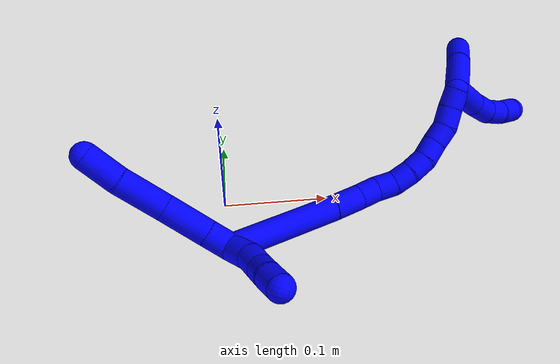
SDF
<sdf version="1.7">
 <world name="default">
  <model name="1">
   <static>0</static>
   <link name="1">
    <collision name="collision-cylinder-e_1_2_8">
     <pose>0.002393 -0.002239 0.012039 0.183877 0.192963 0.017846</pose>
     <geometry><cylinder><radius>0.0125</radius><length>0.024954</length></cylinder></geometry>
     <surface>
      <friction><ode><mu>1.16</mu><mu2>1.16</mu2><slip1>0</slip1><slip2>0</slip2></ode></friction>
      <contact><ode><kp>1e+06</kp><kd>1</kd><max_vel>0</max_vel><min_depth>0.001</min_depth></ode></contact>
     </surface>
    </collision>
    <visual name="visual-cylinder-e_1_2_8">
     <pose>0.002393 -0.002239 0.012039 0.183877 0.192963 0.017846</pose>
     <geometry><cylinder><radius>0.0125</radius><length>0.024954</length></cylinder></geometry>
     <material><ambient>0 0 1 1</ambient></material>
    </visual>
    <collision name="collision-cylinder-e_2_8_9">
     <pose>0.008993 -0.008092 0.045346 0.168337 0.192609 0.0163</pose>
     <geometry><cylinder><radius>0.0125</radius><length>0.043958</length></cylinder></geometry>
     <surface>
      <friction><ode><mu>1.16</mu><mu2>1.16</mu2><slip1>0</slip1><slip2>0</slip2></ode></friction>
      <contact><ode><kp>1e+06</kp><kd>1</kd><max_vel>0</max_vel><min_depth>0.001</min_depth></ode></contact>
     </surface>
    </collision>
    <visual name="visual-cylinder-e_2_8_9">
     <pose>0.008993 -0.008092 0.045346 0.168337 0.192609 0.0163</pose>
     <geometry><cylinder><radius>0.0125</radius><length>0.043958</length></cylinder></geometry>
     <material><ambient>0 0 1 1</ambient></material>
    </visual>
    <collision name="collision-cylinder-e_3_9_10">
     <pose>0.018222 -0.019362 0.087768 0.347217 0.21964 0.03867</pose>
     <geometry><cylinder><radius>0.0125</radius><length>0.046103</length></cylinder></geometry>
     <surface>
      <friction><ode><mu>1.16</mu><mu2>1.16</mu2><slip1>0</slip1><slip2>0</slip2></ode></friction>
      <contact><ode><kp>1e+06</kp><kd>1</kd><max_vel>0</max_vel><min_depth>0.001</min_depth></ode></contact>
     </surface>
    </collision>
    <visual name="visual-cylinder-e_3_9_10">
     <pose>0.018222 -0.019362 0.087768 0.347217 0.21964 0.03867</pose>
     <geometry><cylinder><radius>0.0125</radius><length>0.046103</length></cylinder></geometry>
     <material><ambient>0 0 1 1</ambient></material>
    </visual>
    <collision name="collision-cylinder-e_4_10_6">
     <pose>0.028421 -0.031039 0.125141 0.243076 0.300428 0.036969</pose>
     <geometry><cylinder><radius>0.0125</radius><length>0.034985</length></cylinder></geometry>
     <surface>
      <friction><ode><mu>1.16</mu><mu2>1.16</mu2><slip1>0</slip1><slip2>0</slip2></ode></friction>
      <contact><ode><kp>1e+06</kp><kd>1</kd><max_vel>0</max_vel><min_depth>0.001</min_depth></ode></contact>
     </surface>
    </collision>
    <visual name="visual-cylinder-e_4_10_6">
     <pose>0.028421 -0.031039 0.125141 0.243076 0.300428 0.036969</pose>
     <geometry><cylinder><radius>0.0125</radius><length>0.034985</length></cylinder></geometry>
     <material><ambient>0 0 1 1</ambient></material>
    </visual>
    <collision name="collision-cylinder-e_1_2_11">
     <pose>0.001552 -0.009533 -0.010181 2.38904 0.110821 0.278952</pose>
     <geometry><cylinder><radius>0.0125</radius><length>0.028067</length></cylinder></geometry>
     <surface>
      <friction><ode><mu>1.16</mu><mu2>1.16</mu2><slip1>0</slip1><slip2>0</slip2></ode></friction>
      <contact><ode><kp>1e+06</kp><kd>1</kd><max_vel>0</max_vel><min_depth>0.001</min_depth></ode></contact>
     </surface>
    </collision>
    <visual name="visual-cylinder-e_1_2_11">
     <pose>0.001552 -0.009533 -0.010181 2.38904 0.110821 0.278952</pose>
     <geometry><cylinder><radius>0.0125</radius><length>0.028067</length></cylinder></geometry>
     <material><ambient>0 0 1 1</ambient></material>
    </visual>
    <collision name="collision-cylinder-e_2_11_12">
     <pose>0.002665 -0.029394 -0.027194 2.15525 -0.035434 -0.065911</pose>
     <geometry><cylinder><radius>0.0125</radius><length>0.024782</length></cylinder></geometry>
     <surface>
      <friction><ode><mu>1.16</mu><mu2>1.16</mu2><slip1>0</slip1><slip2>0</slip2></ode></friction>
      <contact><ode><kp>1e+06</kp><kd>1</kd><max_vel>0</max_vel><min_depth>0.001</min_depth></ode></contact>
     </surface>
    </collision>
    <visual name="visual-cylinder-e_2_11_12">
     <pose>0.002665 -0.029394 -0.027194 2.15525 -0.035434 -0.065911</pose>
     <geometry><cylinder><radius>0.0125</radius><length>0.024782</length></cylinder></geometry>
     <material><ambient>0 0 1 1</ambient></material>
    </visual>
    <collision name="collision-cylinder-e_3_12_13">
     <pose>0.003148 -0.050674 -0.038799 1.98173 0.077041 0.11753</pose>
     <geometry><cylinder><radius>0.0125</radius><length>0.023964</length></cylinder></geometry>
     <surface>
      <friction><ode><mu>1.16</mu><mu2>1.16</mu2><slip1>0</slip1><slip2>0</slip2></ode></friction>
      <contact><ode><kp>1e+06</kp><kd>1</kd><max_vel>0</max_vel><min_depth>0.001</min_depth></ode></contact>
     </surface>
    </collision>
    <visual name="visual-cylinder-e_3_12_13">
     <pose>0.003148 -0.050674 -0.038799 1.98173 0.077041 0.11753</pose>
     <geometry><cylinder><radius>0.0125</radius><length>0.023964</length></cylinder></geometry>
     <material><ambient>0 0 1 1</ambient></material>
    </visual>
    <collision name="collision-cylinder-e_4_13_5">
     <pose>0.004073 -0.071176 -0.050144 2.1736 0.000196 0.000372</pose>
     <geometry><cylinder><radius>0.0125</radius><length>0.023187</length></cylinder></geometry>
     <surface>
      <friction><ode><mu>1.16</mu><mu2>1.16</mu2><slip1>0</slip1><slip2>0</slip2></ode></friction>
      <contact><ode><kp>1e+06</kp><kd>1</kd><max_vel>0</max_vel><min_depth>0.001</min_depth></ode></contact>
     </surface>
    </collision>
    <visual name="visual-cylinder-e_4_13_5">
     <pose>0.004073 -0.071176 -0.050144 2.1736 0.000196 0.000372</pose>
     <geometry><cylinder><radius>0.0125</radius><length>0.023187</length></cylinder></geometry>
     <material><ambient>0 0 1 1</ambient></material>
    </visual>
    <collision name="collision-cylinder-e_1_2_14">
     <pose>0.028962 0.029206 -0.035216 -2.44923 0.564358 -1.35403</pose>
     <geometry><cylinder><radius>0.0125</radius><length>0.108295</length></cylinder></geometry>
     <surface>
      <friction><ode><mu>1.16</mu><mu2>1.16</mu2><slip1>0</slip1><slip2>0</slip2></ode></friction>
      <contact><ode><kp>1e+06</kp><kd>1</kd><max_vel>0</max_vel><min_depth>0.001</min_depth></ode></contact>
     </surface>
    </collision>
    <visual name="visual-cylinder-e_1_2_14">
     <pose>0.028962 0.029206 -0.035216 -2.44923 0.564358 -1.35403</pose>
     <geometry><cylinder><radius>0.0125</radius><length>0.108295</length></cylinder></geometry>
     <material><ambient>0 0 1 1</ambient></material>
    </visual>
    <collision name="collision-cylinder-e_2_14_15">
     <pose>0.066271 0.067177 -0.079889 -2.39405 0.574489 -1.2911</pose>
     <geometry><cylinder><radius>0.0125</radius><length>0.03072</length></cylinder></geometry>
     <surface>
      <friction><ode><mu>1.16</mu><mu2>1.16</mu2><slip1>0</slip1><slip2>0</slip2></ode></friction>
      <contact><ode><kp>1e+06</kp><kd>1</kd><max_vel>0</max_vel><min_depth>0.001</min_depth></ode></contact>
     </surface>
    </collision>
    <visual name="visual-cylinder-e_2_14_15">
     <pose>0.066271 0.067177 -0.079889 -2.39405 0.574489 -1.2911</pose>
     <geometry><cylinder><radius>0.0125</radius><length>0.03072</length></cylinder></geometry>
     <material><ambient>0 0 1 1</ambient></material>
    </visual>
    <collision name="collision-cylinder-e_3_15_16">
     <pose>0.080979 0.080981 -0.095769 -2.47662 0.661911 -1.56583</pose>
     <geometry><cylinder><radius>0.0125</radius><length>0.020699</length></cylinder></geometry>
     <surface>
      <friction><ode><mu>1.16</mu><mu2>1.16</mu2><slip1>0</slip1><slip2>0</slip2></ode></friction>
      <contact><ode><kp>1e+06</kp><kd>1</kd><max_vel>0</max_vel><min_depth>0.001</min_depth></ode></contact>
     </surface>
    </collision>
    <visual name="visual-cylinder-e_3_15_16">
     <pose>0.080979 0.080981 -0.095769 -2.47662 0.661911 -1.56583</pose>
     <geometry><cylinder><radius>0.0125</radius><length>0.020699</length></cylinder></geometry>
     <material><ambient>0 0 1 1</ambient></material>
    </visual>
    <collision name="collision-cylinder-e_4_16_17">
     <pose>0.093168 0.089349 -0.109672 -2.72264 0.618725 -1.9677</pose>
     <geometry><cylinder><radius>0.0125</radius><length>0.020099</length></cylinder></geometry>
     <surface>
      <friction><ode><mu>1.16</mu><mu2>1.16</mu2><slip1>0</slip1><slip2>0</slip2></ode></friction>
      <contact><ode><kp>1e+06</kp><kd>1</kd><max_vel>0</max_vel><min_depth>0.001</min_depth></ode></contact>
     </surface>
    </collision>
    <visual name="visual-cylinder-e_4_16_17">
     <pose>0.093168 0.089349 -0.109672 -2.72264 0.618725 -1.9677</pose>
     <geometry><cylinder><radius>0.0125</radius><length>0.020099</length></cylinder></geometry>
     <material><ambient>0 0 1 1</ambient></material>
    </visual>
    <collision name="collision-cylinder-e_5_17_18">
     <pose>0.106926 0.095116 -0.12277 -2.73233 0.913033 -2.34195</pose>
     <geometry><cylinder><radius>0.0125</radius><length>0.02004</length></cylinder></geometry>
     <surface>
      <friction><ode><mu>1.16</mu><mu2>1.16</mu2><slip1>0</slip1><slip2>0</slip2></ode></friction>
      <contact><ode><kp>1e+06</kp><kd>1</kd><max_vel>0</max_vel><min_depth>0.001</min_depth></ode></contact>
     </surface>
    </collision>
    <visual name="visual-cylinder-e_5_17_18">
     <pose>0.106926 0.095116 -0.12277 -2.73233 0.913033 -2.34195</pose>
     <geometry><cylinder><radius>0.0125</radius><length>0.02004</length></cylinder></geometry>
     <material><ambient>0 0 1 1</ambient></material>
    </visual>
    <collision name="collision-cylinder-e_6_18_19">
     <pose>0.12331 0.100727 -0.132803 -2.51832 0.999457 -2.07546</pose>
     <geometry><cylinder><radius>0.0125</radius><length>0.020102</length></cylinder></geometry>
     <surface>
      <friction><ode><mu>1.16</mu><mu2>1.16</mu2><slip1>0</slip1><slip2>0</slip2></ode></friction>
      <contact><ode><kp>1e+06</kp><kd>1</kd><max_vel>0</max_vel><min_depth>0.001</min_depth></ode></contact>
     </surface>
    </collision>
    <visual name="visual-cylinder-e_6_18_19">
     <pose>0.12331 0.100727 -0.132803 -2.51832 0.999457 -2.07546</pose>
     <geometry><cylinder><radius>0.0125</radius><length>0.020102</length></cylinder></geometry>
     <material><ambient>0 0 1 1</ambient></material>
    </visual>
    <collision name="collision-cylinder-e_7_19_20">
     <pose>0.141004 0.107376 -0.1389 -2.02176 1.17477 -1.63104</pose>
     <geometry><cylinder><radius>0.0125</radius><length>0.020028</length></cylinder></geometry>
     <surface>
      <friction><ode><mu>1.16</mu><mu2>1.16</mu2><slip1>0</slip1><slip2>0</slip2></ode></friction>
      <contact><ode><kp>1e+06</kp><kd>1</kd><max_vel>0</max_vel><min_depth>0.001</min_depth></ode></contact>
     </surface>
    </collision>
    <visual name="visual-cylinder-e_7_19_20">
     <pose>0.141004 0.107376 -0.1389 -2.02176 1.17477 -1.63104</pose>
     <geometry><cylinder><radius>0.0125</radius><length>0.020028</length></cylinder></geometry>
     <material><ambient>0 0 1 1</ambient></material>
    </visual>
    <collision name="collision-cylinder-e_8_20_21">
     <pose>0.15979 0.112821 -0.142852 -2.42686 1.266 -2.20008</pose>
     <geometry><cylinder><radius>0.0125</radius><length>0.020017</length></cylinder></geometry>
     <surface>
      <friction><ode><mu>1.16</mu><mu2>1.16</mu2><slip1>0</slip1><slip2>0</slip2></ode></friction>
      <contact><ode><kp>1e+06</kp><kd>1</kd><max_vel>0</max_vel><min_depth>0.001</min_depth></ode></contact>
     </surface>
    </collision>
    <visual name="visual-cylinder-e_8_20_21">
     <pose>0.15979 0.112821 -0.142852 -2.42686 1.266 -2.20008</pose>
     <geometry><cylinder><radius>0.0125</radius><length>0.020017</length></cylinder></geometry>
     <material><ambient>0 0 1 1</ambient></material>
    </visual>
    <collision name="collision-cylinder-e_9_21_22">
     <pose>0.179177 0.11631 -0.144185 -1.01926 1.39135 -0.873174</pose>
     <geometry><cylinder><radius>0.0125</radius><length>0.02</length></cylinder></geometry>
     <surface>
      <friction><ode><mu>1.16</mu><mu2>1.16</mu2><slip1>0</slip1><slip2>0</slip2></ode></friction>
      <contact><ode><kp>1e+06</kp><kd>1</kd><max_vel>0</max_vel><min_depth>0.001</min_depth></ode></contact>
     </surface>
    </collision>
    <visual name="visual-cylinder-e_9_21_22">
     <pose>0.179177 0.11631 -0.144185 -1.01926 1.39135 -0.873174</pose>
     <geometry><cylinder><radius>0.0125</radius><length>0.02</length></cylinder></geometry>
     <material><ambient>0 0 1 1</ambient></material>
    </visual>
    <collision name="collision-cylinder-e_10_22_1">
     <pose>0.198996 0.118434 -0.143022 -1.20898 1.50619 -1.14924</pose>
     <geometry><cylinder><radius>0.0125</radius><length>0.02</length></cylinder></geometry>
     <surface>
      <friction><ode><mu>1.16</mu><mu2>1.16</mu2><slip1>0</slip1><slip2>0</slip2></ode></friction>
      <contact><ode><kp>1e+06</kp><kd>1</kd><max_vel>0</max_vel><min_depth>0.001</min_depth></ode></contact>
     </surface>
    </collision>
    <visual name="visual-cylinder-e_10_22_1">
     <pose>0.198996 0.118434 -0.143022 -1.20898 1.50619 -1.14924</pose>
     <geometry><cylinder><radius>0.0125</radius><length>0.02</length></cylinder></geometry>
     <material><ambient>0 0 1 1</ambient></material>
    </visual>
    <collision name="collision-cylinder-e_1_1_23">
     <pose>0.206218 0.132118 -0.154312 -2.2928 -0.156874 0.344444</pose>
     <geometry><cylinder><radius>0.0125</radius><length>0.035291</length></cylinder></geometry>
     <surface>
      <friction><ode><mu>1.16</mu><mu2>1.16</mu2><slip1>0</slip1><slip2>0</slip2></ode></friction>
      <contact><ode><kp>1e+06</kp><kd>1</kd><max_vel>0</max_vel><min_depth>0.001</min_depth></ode></contact>
     </surface>
    </collision>
    <visual name="visual-cylinder-e_1_1_23">
     <pose>0.206218 0.132118 -0.154312 -2.2928 -0.156874 0.344444</pose>
     <geometry><cylinder><radius>0.0125</radius><length>0.035291</length></cylinder></geometry>
     <material><ambient>0 0 1 1</ambient></material>
    </visual>
    <collision name="collision-cylinder-e_2_23_24">
     <pose>0.20258 0.153708 -0.174658 -2.37451 -0.071714 0.177328</pose>
     <geometry><cylinder><radius>0.0125</radius><length>0.024587</length></cylinder></geometry>
     <surface>
      <friction><ode><mu>1.16</mu><mu2>1.16</mu2><slip1>0</slip1><slip2>0</slip2></ode></friction>
      <contact><ode><kp>1e+06</kp><kd>1</kd><max_vel>0</max_vel><min_depth>0.001</min_depth></ode></contact>
     </surface>
    </collision>
    <visual name="visual-cylinder-e_2_23_24">
     <pose>0.20258 0.153708 -0.174658 -2.37451 -0.071714 0.177328</pose>
     <geometry><cylinder><radius>0.0125</radius><length>0.024587</length></cylinder></geometry>
     <material><ambient>0 0 1 1</ambient></material>
    </visual>
    <collision name="collision-cylinder-e_3_24_25">
     <pose>0.204075 0.168326 -0.191043 -2.46186 0.239844 -0.656901</pose>
     <geometry><cylinder><radius>0.0125</radius><length>0.020005</length></cylinder></geometry>
     <surface>
      <friction><ode><mu>1.16</mu><mu2>1.16</mu2><slip1>0</slip1><slip2>0</slip2></ode></friction>
      <contact><ode><kp>1e+06</kp><kd>1</kd><max_vel>0</max_vel><min_depth>0.001</min_depth></ode></contact>
     </surface>
    </collision>
    <visual name="visual-cylinder-e_3_24_25">
     <pose>0.204075 0.168326 -0.191043 -2.46186 0.239844 -0.656901</pose>
     <geometry><cylinder><radius>0.0125</radius><length>0.020005</length></cylinder></geometry>
     <material><ambient>0 0 1 1</ambient></material>
    </visual>
    <collision name="collision-cylinder-e_4_25_4">
     <pose>0.210403 0.181124 -0.204986 -2.333 0.403716 -0.892266</pose>
     <geometry><cylinder><radius>0.0125</radius><length>0.020117</length></cylinder></geometry>
     <surface>
      <friction><ode><mu>1.16</mu><mu2>1.16</mu2><slip1>0</slip1><slip2>0</slip2></ode></friction>
      <contact><ode><kp>1e+06</kp><kd>1</kd><max_vel>0</max_vel><min_depth>0.001</min_depth></ode></contact>
     </surface>
    </collision>
    <visual name="visual-cylinder-e_4_25_4">
     <pose>0.210403 0.181124 -0.204986 -2.333 0.403716 -0.892266</pose>
     <geometry><cylinder><radius>0.0125</radius><length>0.020117</length></cylinder></geometry>
     <material><ambient>0 0 1 1</ambient></material>
    </visual>
    <collision name="collision-cylinder-e_1_1_26">
     <pose>0.22437 0.145581 -0.140236 -1.47477 0.523578 -0.477457</pose>
     <geometry><cylinder><radius>0.0125</radius><length>0.061582</length></cylinder></geometry>
     <surface>
      <friction><ode><mu>1.16</mu><mu2>1.16</mu2><slip1>0</slip1><slip2>0</slip2></ode></friction>
      <contact><ode><kp>1e+06</kp><kd>1</kd><max_vel>0</max_vel><min_depth>0.001</min_depth></ode></contact>
     </surface>
    </collision>
    <visual name="visual-cylinder-e_1_1_26">
     <pose>0.22437 0.145581 -0.140236 -1.47477 0.523578 -0.477457</pose>
     <geometry><cylinder><radius>0.0125</radius><length>0.061582</length></cylinder></geometry>
     <material><ambient>0 0 1 1</ambient></material>
    </visual>
    <collision name="collision-cylinder-e_2_26_3">
     <pose>0.248575 0.189081 -0.135724 -1.45598 0.476473 -0.426327</pose>
     <geometry><cylinder><radius>0.0125</radius><length>0.038418</length></cylinder></geometry>
     <surface>
      <friction><ode><mu>1.16</mu><mu2>1.16</mu2><slip1>0</slip1><slip2>0</slip2></ode></friction>
      <contact><ode><kp>1e+06</kp><kd>1</kd><max_vel>0</max_vel><min_depth>0.001</min_depth></ode></contact>
     </surface>
    </collision>
    <visual name="visual-cylinder-e_2_26_3">
     <pose>0.248575 0.189081 -0.135724 -1.45598 0.476473 -0.426327</pose>
     <geometry><cylinder><radius>0.0125</radius><length>0.038418</length></cylinder></geometry>
     <material><ambient>0 0 1 1</ambient></material>
    </visual>
    <collision name="collision-sphere-3">
     <pose>0.257385 0.206038 -0.133769 0 -0 0</pose>
     <geometry><sphere><radius>0.0125</radius></sphere></geometry>
     <surface>
      <friction><ode><mu>1.16</mu><mu2>1.16</mu2><slip1>0</slip1><slip2>0</slip2></ode></friction>
      <contact><ode><kp>1e+06</kp><kd>1</kd><max_vel>0</max_vel><min_depth>0.001</min_depth></ode></contact>
     </surface>
    </collision>
    <visual name="visual-sphere-3">
     <pose>0.257385 0.206038 -0.133769 0 -0 0</pose>
     <geometry><sphere><radius>0.0125</radius></sphere></geometry>
     <material><ambient>0 0 1 1</ambient></material>
    </visual>
    <collision name="collision-sphere-26">
     <pose>0.239765 0.172125 -0.13768 0 -0 0</pose>
     <geometry><sphere><radius>0.0125</radius></sphere></geometry>
     <surface>
      <friction><ode><mu>1.16</mu><mu2>1.16</mu2><slip1>0</slip1><slip2>0</slip2></ode></friction>
      <contact><ode><kp>1e+06</kp><kd>1</kd><max_vel>0</max_vel><min_depth>0.001</min_depth></ode></contact>
     </surface>
    </collision>
    <visual name="visual-sphere-26">
     <pose>0.239765 0.172125 -0.13768 0 -0 0</pose>
     <geometry><sphere><radius>0.0125</radius></sphere></geometry>
     <material><ambient>0 0 1 1</ambient></material>
    </visual>
    <collision name="collision-sphere-4">
     <pose>0.214354 0.187814 -0.211374 0 -0 0</pose>
     <geometry><sphere><radius>0.0125</radius></sphere></geometry>
     <surface>
      <friction><ode><mu>1.16</mu><mu2>1.16</mu2><slip1>0</slip1><slip2>0</slip2></ode></friction>
      <contact><ode><kp>1e+06</kp><kd>1</kd><max_vel>0</max_vel><min_depth>0.001</min_depth></ode></contact>
     </surface>
    </collision>
    <visual name="visual-sphere-4">
     <pose>0.214354 0.187814 -0.211374 0 -0 0</pose>
     <geometry><sphere><radius>0.0125</radius></sphere></geometry>
     <material><ambient>0 0 1 1</ambient></material>
    </visual>
    <collision name="collision-sphere-25">
     <pose>0.206452 0.174433 -0.198599 0 -0 0</pose>
     <geometry><sphere><radius>0.0125</radius></sphere></geometry>
     <surface>
      <friction><ode><mu>1.16</mu><mu2>1.16</mu2><slip1>0</slip1><slip2>0</slip2></ode></friction>
      <contact><ode><kp>1e+06</kp><kd>1</kd><max_vel>0</max_vel><min_depth>0.001</min_depth></ode></contact>
     </surface>
    </collision>
    <visual name="visual-sphere-25">
     <pose>0.206452 0.174433 -0.198599 0 -0 0</pose>
     <geometry><sphere><radius>0.0125</radius></sphere></geometry>
     <material><ambient>0 0 1 1</ambient></material>
    </visual>
    <collision name="collision-sphere-24">
     <pose>0.201699 0.162219 -0.183486 0 -0 0</pose>
     <geometry><sphere><radius>0.0125</radius></sphere></geometry>
     <surface>
      <friction><ode><mu>1.16</mu><mu2>1.16</mu2><slip1>0</slip1><slip2>0</slip2></ode></friction>
      <contact><ode><kp>1e+06</kp><kd>1</kd><max_vel>0</max_vel><min_depth>0.001</min_depth></ode></contact>
     </surface>
    </collision>
    <visual name="visual-sphere-24">
     <pose>0.201699 0.162219 -0.183486 0 -0 0</pose>
     <geometry><sphere><radius>0.0125</radius></sphere></geometry>
     <material><ambient>0 0 1 1</ambient></material>
    </visual>
    <collision name="collision-sphere-23">
     <pose>0.203461 0.145198 -0.16583 0 -0 0</pose>
     <geometry><sphere><radius>0.0125</radius></sphere></geometry>
     <surface>
      <friction><ode><mu>1.16</mu><mu2>1.16</mu2><slip1>0</slip1><slip2>0</slip2></ode></friction>
      <contact><ode><kp>1e+06</kp><kd>1</kd><max_vel>0</max_vel><min_depth>0.001</min_depth></ode></contact>
     </surface>
    </collision>
    <visual name="visual-sphere-23">
     <pose>0.203461 0.145198 -0.16583 0 -0 0</pose>
     <geometry><sphere><radius>0.0125</radius></sphere></geometry>
     <material><ambient>0 0 1 1</ambient></material>
    </visual>
    <collision name="collision-sphere-1">
     <pose>0.208975 0.119038 -0.142793 0 -0 0</pose>
     <geometry><sphere><radius>0.0125</radius></sphere></geometry>
     <surface>
      <friction><ode><mu>1.16</mu><mu2>1.16</mu2><slip1>0</slip1><slip2>0</slip2></ode></friction>
      <contact><ode><kp>1e+06</kp><kd>1</kd><max_vel>0</max_vel><min_depth>0.001</min_depth></ode></contact>
     </surface>
    </collision>
    <visual name="visual-sphere-1">
     <pose>0.208975 0.119038 -0.142793 0 -0 0</pose>
     <geometry><sphere><radius>0.0125</radius></sphere></geometry>
     <material><ambient>0 0 1 1</ambient></material>
    </visual>
    <collision name="collision-sphere-22">
     <pose>0.189016 0.11783 -0.14325 0 -0 0</pose>
     <geometry><sphere><radius>0.0125</radius></sphere></geometry>
     <surface>
      <friction><ode><mu>1.16</mu><mu2>1.16</mu2><slip1>0</slip1><slip2>0</slip2></ode></friction>
      <contact><ode><kp>1e+06</kp><kd>1</kd><max_vel>0</max_vel><min_depth>0.001</min_depth></ode></contact>
     </surface>
    </collision>
    <visual name="visual-sphere-22">
     <pose>0.189016 0.11783 -0.14325 0 -0 0</pose>
     <geometry><sphere><radius>0.0125</radius></sphere></geometry>
     <material><ambient>0 0 1 1</ambient></material>
    </visual>
    <collision name="collision-sphere-21">
     <pose>0.169337 0.11479 -0.145121 0 -0 0</pose>
     <geometry><sphere><radius>0.0125</radius></sphere></geometry>
     <surface>
      <friction><ode><mu>1.16</mu><mu2>1.16</mu2><slip1>0</slip1><slip2>0</slip2></ode></friction>
      <contact><ode><kp>1e+06</kp><kd>1</kd><max_vel>0</max_vel><min_depth>0.001</min_depth></ode></contact>
     </surface>
    </collision>
    <visual name="visual-sphere-21">
     <pose>0.169337 0.11479 -0.145121 0 -0 0</pose>
     <geometry><sphere><radius>0.0125</radius></sphere></geometry>
     <material><ambient>0 0 1 1</ambient></material>
    </visual>
    <collision name="collision-sphere-11">
     <pose>0.003104 -0.019066 -0.020362 0 -0 0</pose>
     <geometry><sphere><radius>0.0125</radius></sphere></geometry>
     <surface>
      <friction><ode><mu>1.16</mu><mu2>1.16</mu2><slip1>0</slip1><slip2>0</slip2></ode></friction>
      <contact><ode><kp>1e+06</kp><kd>1</kd><max_vel>0</max_vel><min_depth>0.001</min_depth></ode></contact>
     </surface>
    </collision>
    <visual name="visual-sphere-11">
     <pose>0.003104 -0.019066 -0.020362 0 -0 0</pose>
     <geometry><sphere><radius>0.0125</radius></sphere></geometry>
     <material><ambient>0 0 1 1</ambient></material>
    </visual>
    <collision name="collision-sphere-6">
     <pose>0.033598 -0.035061 0.141359 0 -0 0</pose>
     <geometry><sphere><radius>0.0125</radius></sphere></geometry>
     <surface>
      <friction><ode><mu>1.16</mu><mu2>1.16</mu2><slip1>0</slip1><slip2>0</slip2></ode></friction>
      <contact><ode><kp>1e+06</kp><kd>1</kd><max_vel>0</max_vel><min_depth>0.001</min_depth></ode></contact>
     </surface>
    </collision>
    <visual name="visual-sphere-6">
     <pose>0.033598 -0.035061 0.141359 0 -0 0</pose>
     <geometry><sphere><radius>0.0125</radius></sphere></geometry>
     <material><ambient>0 0 1 1</ambient></material>
    </visual>
    <collision name="collision-sphere-10">
     <pose>0.023245 -0.027018 0.108923 0 -0 0</pose>
     <geometry><sphere><radius>0.0125</radius></sphere></geometry>
     <surface>
      <friction><ode><mu>1.16</mu><mu2>1.16</mu2><slip1>0</slip1><slip2>0</slip2></ode></friction>
      <contact><ode><kp>1e+06</kp><kd>1</kd><max_vel>0</max_vel><min_depth>0.001</min_depth></ode></contact>
     </surface>
    </collision>
    <visual name="visual-sphere-10">
     <pose>0.023245 -0.027018 0.108923 0 -0 0</pose>
     <geometry><sphere><radius>0.0125</radius></sphere></geometry>
     <material><ambient>0 0 1 1</ambient></material>
    </visual>
    <collision name="collision-sphere-9">
     <pose>0.0132 -0.011707 0.066613 0 -0 0</pose>
     <geometry><sphere><radius>0.0125</radius></sphere></geometry>
     <surface>
      <friction><ode><mu>1.16</mu><mu2>1.16</mu2><slip1>0</slip1><slip2>0</slip2></ode></friction>
      <contact><ode><kp>1e+06</kp><kd>1</kd><max_vel>0</max_vel><min_depth>0.001</min_depth></ode></contact>
     </surface>
    </collision>
    <visual name="visual-sphere-9">
     <pose>0.0132 -0.011707 0.066613 0 -0 0</pose>
     <geometry><sphere><radius>0.0125</radius></sphere></geometry>
     <material><ambient>0 0 1 1</ambient></material>
    </visual>
    <collision name="collision-sphere-2">
     <geometry><sphere><radius>0.0125</radius></sphere></geometry>
     <surface>
      <friction><ode><mu>1.16</mu><mu2>1.16</mu2><slip1>0</slip1><slip2>0</slip2></ode></friction>
      <contact><ode><kp>1e+06</kp><kd>1</kd><max_vel>0</max_vel><min_depth>0.001</min_depth></ode></contact>
     </surface>
    </collision>
    <visual name="visual-sphere-2">
     <geometry><sphere><radius>0.0125</radius></sphere></geometry>
     <material><ambient>0 0 1 1</ambient></material>
    </visual>
    <collision name="collision-sphere-19">
     <pose>0.131765 0.103899 -0.137216 0 -0 0</pose>
     <geometry><sphere><radius>0.0125</radius></sphere></geometry>
     <surface>
      <friction><ode><mu>1.16</mu><mu2>1.16</mu2><slip1>0</slip1><slip2>0</slip2></ode></friction>
      <contact><ode><kp>1e+06</kp><kd>1</kd><max_vel>0</max_vel><min_depth>0.001</min_depth></ode></contact>
     </surface>
    </collision>
    <visual name="visual-sphere-19">
     <pose>0.131765 0.103899 -0.137216 0 -0 0</pose>
     <geometry><sphere><radius>0.0125</radius></sphere></geometry>
     <material><ambient>0 0 1 1</ambient></material>
    </visual>
    <collision name="collision-sphere-8">
     <pose>0.004785 -0.004478 0.024078 0 -0 0</pose>
     <geometry><sphere><radius>0.0125</radius></sphere></geometry>
     <surface>
      <friction><ode><mu>1.16</mu><mu2>1.16</mu2><slip1>0</slip1><slip2>0</slip2></ode></friction>
      <contact><ode><kp>1e+06</kp><kd>1</kd><max_vel>0</max_vel><min_depth>0.001</min_depth></ode></contact>
     </surface>
    </collision>
    <visual name="visual-sphere-8">
     <pose>0.004785 -0.004478 0.024078 0 -0 0</pose>
     <geometry><sphere><radius>0.0125</radius></sphere></geometry>
     <material><ambient>0 0 1 1</ambient></material>
    </visual>
    <collision name="collision-sphere-12">
     <pose>0.002226 -0.039722 -0.034027 0 -0 0</pose>
     <geometry><sphere><radius>0.0125</radius></sphere></geometry>
     <surface>
      <friction><ode><mu>1.16</mu><mu2>1.16</mu2><slip1>0</slip1><slip2>0</slip2></ode></friction>
      <contact><ode><kp>1e+06</kp><kd>1</kd><max_vel>0</max_vel><min_depth>0.001</min_depth></ode></contact>
     </surface>
    </collision>
    <visual name="visual-sphere-12">
     <pose>0.002226 -0.039722 -0.034027 0 -0 0</pose>
     <geometry><sphere><radius>0.0125</radius></sphere></geometry>
     <material><ambient>0 0 1 1</ambient></material>
    </visual>
    <collision name="collision-sphere-13">
     <pose>0.00407 -0.061626 -0.043571 0 -0 0</pose>
     <geometry><sphere><radius>0.0125</radius></sphere></geometry>
     <surface>
      <friction><ode><mu>1.16</mu><mu2>1.16</mu2><slip1>0</slip1><slip2>0</slip2></ode></friction>
      <contact><ode><kp>1e+06</kp><kd>1</kd><max_vel>0</max_vel><min_depth>0.001</min_depth></ode></contact>
     </surface>
    </collision>
    <visual name="visual-sphere-13">
     <pose>0.00407 -0.061626 -0.043571 0 -0 0</pose>
     <geometry><sphere><radius>0.0125</radius></sphere></geometry>
     <material><ambient>0 0 1 1</ambient></material>
    </visual>
    <collision name="collision-sphere-5">
     <pose>0.004075 -0.080726 -0.056717 0 -0 0</pose>
     <geometry><sphere><radius>0.0125</radius></sphere></geometry>
     <surface>
      <friction><ode><mu>1.16</mu><mu2>1.16</mu2><slip1>0</slip1><slip2>0</slip2></ode></friction>
      <contact><ode><kp>1e+06</kp><kd>1</kd><max_vel>0</max_vel><min_depth>0.001</min_depth></ode></contact>
     </surface>
    </collision>
    <visual name="visual-sphere-5">
     <pose>0.004075 -0.080726 -0.056717 0 -0 0</pose>
     <geometry><sphere><radius>0.0125</radius></sphere></geometry>
     <material><ambient>0 0 1 1</ambient></material>
    </visual>
    <collision name="collision-sphere-14">
     <pose>0.057924 0.058411 -0.070432 0 -0 0</pose>
     <geometry><sphere><radius>0.0125</radius></sphere></geometry>
     <surface>
      <friction><ode><mu>1.16</mu><mu2>1.16</mu2><slip1>0</slip1><slip2>0</slip2></ode></friction>
      <contact><ode><kp>1e+06</kp><kd>1</kd><max_vel>0</max_vel><min_depth>0.001</min_depth></ode></contact>
     </surface>
    </collision>
    <visual name="visual-sphere-14">
     <pose>0.057924 0.058411 -0.070432 0 -0 0</pose>
     <geometry><sphere><radius>0.0125</radius></sphere></geometry>
     <material><ambient>0 0 1 1</ambient></material>
    </visual>
    <collision name="collision-sphere-15">
     <pose>0.074618 0.075943 -0.089345 0 -0 0</pose>
     <geometry><sphere><radius>0.0125</radius></sphere></geometry>
     <surface>
      <friction><ode><mu>1.16</mu><mu2>1.16</mu2><slip1>0</slip1><slip2>0</slip2></ode></friction>
      <contact><ode><kp>1e+06</kp><kd>1</kd><max_vel>0</max_vel><min_depth>0.001</min_depth></ode></contact>
     </surface>
    </collision>
    <visual name="visual-sphere-15">
     <pose>0.074618 0.075943 -0.089345 0 -0 0</pose>
     <geometry><sphere><radius>0.0125</radius></sphere></geometry>
     <material><ambient>0 0 1 1</ambient></material>
    </visual>
    <collision name="collision-sphere-16">
     <pose>0.08734 0.086018 -0.102194 0 -0 0</pose>
     <geometry><sphere><radius>0.0125</radius></sphere></geometry>
     <surface>
      <friction><ode><mu>1.16</mu><mu2>1.16</mu2><slip1>0</slip1><slip2>0</slip2></ode></friction>
      <contact><ode><kp>1e+06</kp><kd>1</kd><max_vel>0</max_vel><min_depth>0.001</min_depth></ode></contact>
     </surface>
    </collision>
    <visual name="visual-sphere-16">
     <pose>0.08734 0.086018 -0.102194 0 -0 0</pose>
     <geometry><sphere><radius>0.0125</radius></sphere></geometry>
     <material><ambient>0 0 1 1</ambient></material>
    </visual>
    <collision name="collision-sphere-17">
     <pose>0.098997 0.092679 -0.117151 0 -0 0</pose>
     <geometry><sphere><radius>0.0125</radius></sphere></geometry>
     <surface>
      <friction><ode><mu>1.16</mu><mu2>1.16</mu2><slip1>0</slip1><slip2>0</slip2></ode></friction>
      <contact><ode><kp>1e+06</kp><kd>1</kd><max_vel>0</max_vel><min_depth>0.001</min_depth></ode></contact>
     </surface>
    </collision>
    <visual name="visual-sphere-17">
     <pose>0.098997 0.092679 -0.117151 0 -0 0</pose>
     <geometry><sphere><radius>0.0125</radius></sphere></geometry>
     <material><ambient>0 0 1 1</ambient></material>
    </visual>
    <collision name="collision-sphere-18">
     <pose>0.114856 0.097554 -0.12839 0 -0 0</pose>
     <geometry><sphere><radius>0.0125</radius></sphere></geometry>
     <surface>
      <friction><ode><mu>1.16</mu><mu2>1.16</mu2><slip1>0</slip1><slip2>0</slip2></ode></friction>
      <contact><ode><kp>1e+06</kp><kd>1</kd><max_vel>0</max_vel><min_depth>0.001</min_depth></ode></contact>
     </surface>
    </collision>
    <visual name="visual-sphere-18">
     <pose>0.114856 0.097554 -0.12839 0 -0 0</pose>
     <geometry><sphere><radius>0.0125</radius></sphere></geometry>
     <material><ambient>0 0 1 1</ambient></material>
    </visual>
    <collision name="collision-sphere-20">
     <pose>0.150243 0.110853 -0.140584 0 -0 0</pose>
     <geometry><sphere><radius>0.0125</radius></sphere></geometry>
     <surface>
      <friction><ode><mu>1.16</mu><mu2>1.16</mu2><slip1>0</slip1><slip2>0</slip2></ode></friction>
      <contact><ode><kp>1e+06</kp><kd>1</kd><max_vel>0</max_vel><min_depth>0.001</min_depth></ode></contact>
     </surface>
    </collision>
    <visual name="visual-sphere-20">
     <pose>0.150243 0.110853 -0.140584 0 -0 0</pose>
     <geometry><sphere><radius>0.0125</radius></sphere></geometry>
     <material><ambient>0 0 1 1</ambient></material>
    </visual>
    <inertial>
     <pose>0.097918 0.062886 -0.067786 0 -0 0</pose>
     <mass>0.75</mass>
     <inertia><ixx>-0</ixx><ixy>0</ixy><ixz>0</ixz><iyy>-4.4e-05</iyy><iyz>0</iyz><izz>-0.000182</izz></inertia>
    </inertial>
   </link>
   <pose>0.005093 -0.080332 0.01508 -1.06759 -0.946864 0.77001</pose>
  </model>
 </world>
</sdf>
